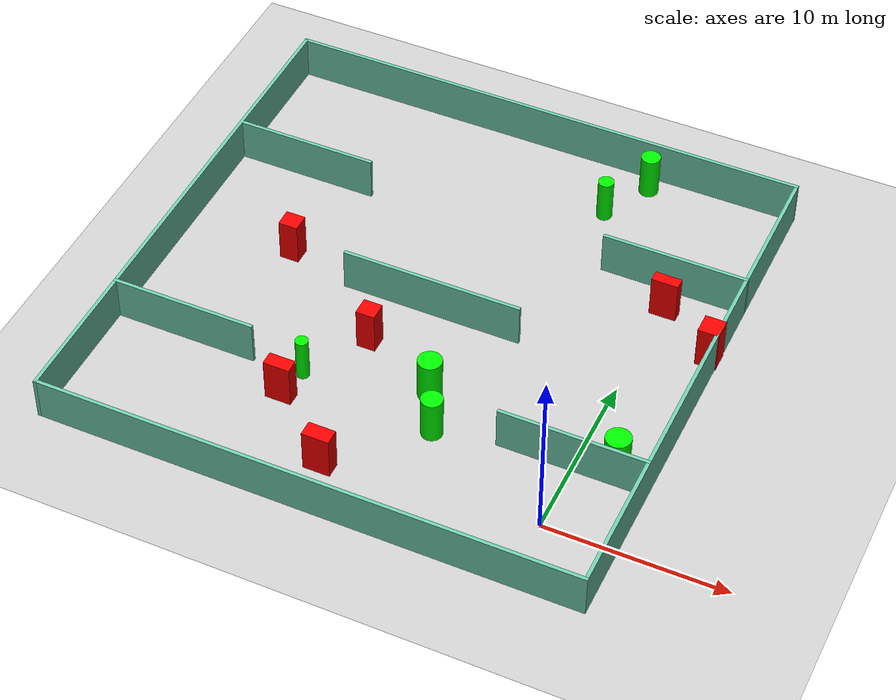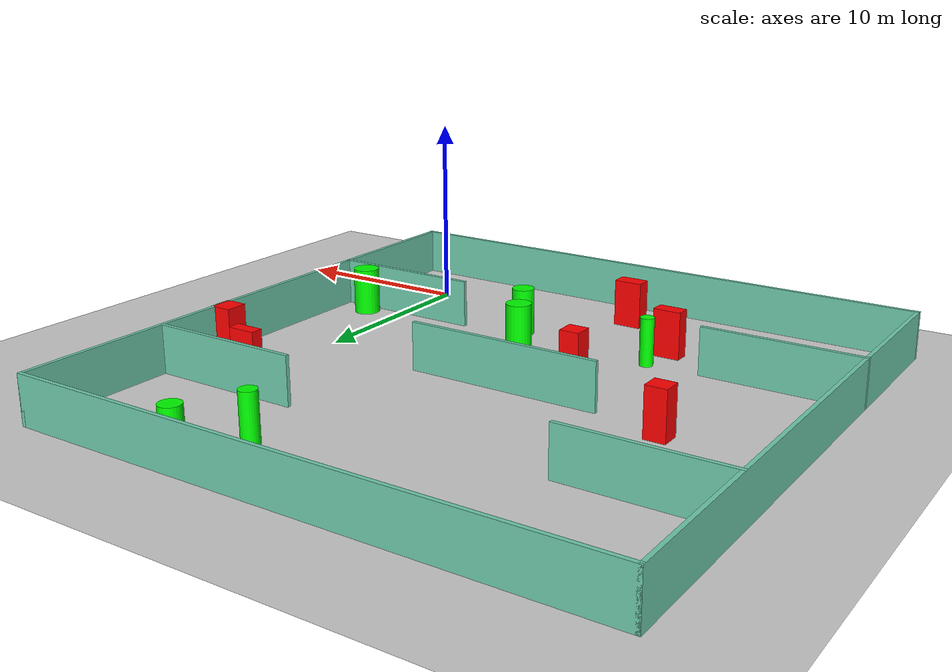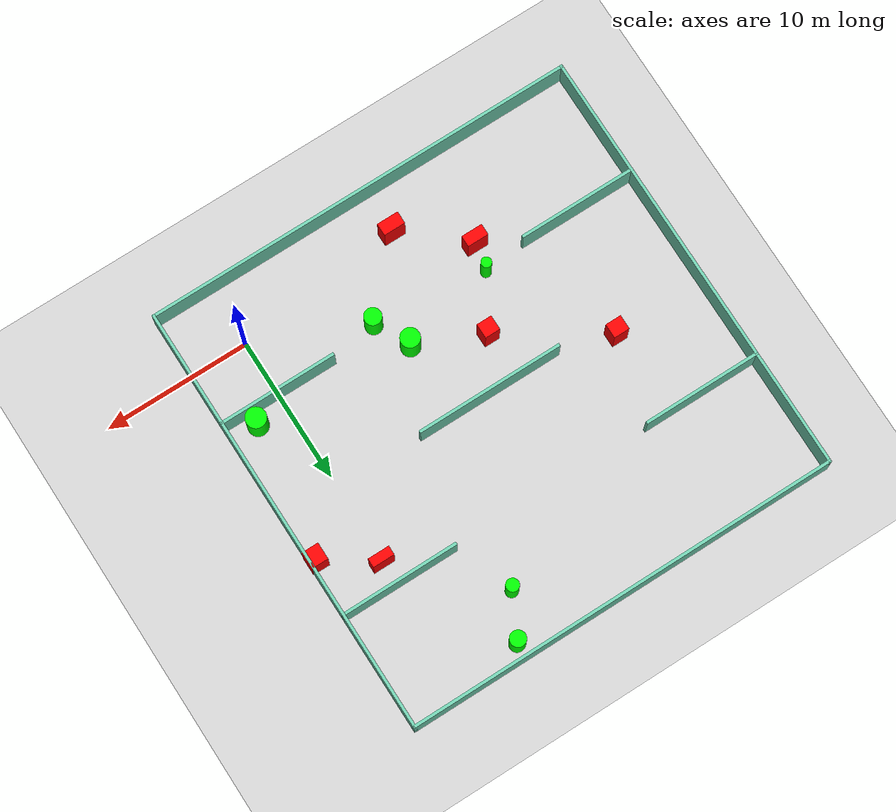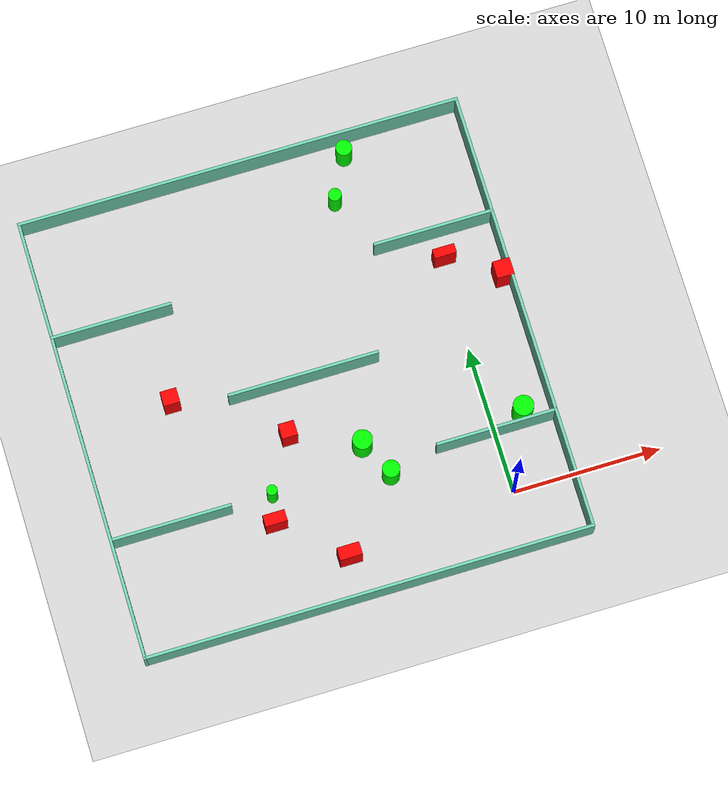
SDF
<sdf version="1.7">
 <world name="default">
  <light name="sun" type="directional">
   <pose>0 0 10 0 -0 0</pose>
   <diffuse>0.8 0.8 0.8 1</diffuse>
   <specular>0.2 0.2 0.2 1</specular>
   <attenuation>
    <range>1000</range>
    <constant>0.9</constant>
    <linear>0.01</linear>
    <quadratic>0.001</quadratic>
   </attenuation>
   <direction>-0.5 0.1 -0.9</direction>
   <spot><inner_angle>0</inner_angle><outer_angle>0</outer_angle><falloff>0</falloff></spot>
  </light>
  <model name="ground_plane">
   <static>1</static>
   <link name="link">
    <collision name="collision">
     <geometry><plane><normal>0 0 1</normal><size>100 100</size></plane></geometry>
     <surface>
      <contact><collide_bitmask>65535</collide_bitmask></contact>
      <friction><ode><mu>100</mu><mu2>50</mu2></ode></friction>
     </surface>
    </collision>
    <visual name="visual">
     <cast_shadows>0</cast_shadows>
     <geometry><plane><normal>0 0 1</normal><size>100 100</size></plane></geometry>
     <material>
      <script><uri>file://media/materials/scripts/gazebo.material</uri><name>Gazebo/Grey</name></script>
     </material>
    </visual>
   </link>
  </model>
  <gravity>0 0 -9.8</gravity>
  <magnetic_field>6e-06 2.3e-05 -4.2e-05</magnetic_field>
  <atmosphere type="adiabatic"/>
  <physics type="ode">
   <max_step_size>0.001</max_step_size>
   <real_time_factor>1</real_time_factor>
   <real_time_update_rate>1000</real_time_update_rate>
  </physics>
  <scene><ambient>0.4 0.4 0.4 1</ambient><background>0.7 0.7 0.7 1</background><shadows>1</shadows></scene>
  <spherical_coordinates>
   <surface_model>EARTH_WGS84</surface_model>
   <latitude_deg>0</latitude_deg>
   <longitude_deg>0</longitude_deg>
   <elevation>0</elevation>
   <heading_deg>0</heading_deg>
  </spherical_coordinates>
  <model name="my_base_walls">
   <link name="Wall_10">
    <collision name="Wall_10_Collision">
     <geometry><box><size>8.2 0.2 2.5</size></box></geometry>
     <pose>0 0 1.25 0 -0 0</pose>
    </collision>
    <visual name="Wall_10_Visual">
     <pose>0 0 1.25 0 -0 0</pose>
     <geometry><box><size>8.2 0.2 2.5</size></box></geometry>
     <material>
      <script><uri>file://media/materials/scripts/gazebo.material</uri><name>Gazebo/Grey</name></script>
      <ambient>0.435294 0.796078 0.67451 1</ambient>
     </material>
     <meta><layer>0</layer></meta>
    </visual>
    <pose>-11 -7 0 0 -0 0</pose>
   </link>
   <link name="Wall_12">
    <collision name="Wall_12_Collision">
     <geometry><box><size>8.2 0.2 2.5</size></box></geometry>
     <pose>0 0 1.25 0 -0 0</pose>
    </collision>
    <visual name="Wall_12_Visual">
     <pose>0 0 1.25 0 -0 0</pose>
     <geometry><box><size>8.2 0.2 2.5</size></box></geometry>
     <material>
      <script><uri>file://media/materials/scripts/gazebo.material</uri><name>Gazebo/Grey</name></script>
      <ambient>0.435294 0.796078 0.67451 1</ambient>
     </material>
     <meta><layer>0</layer></meta>
    </visual>
    <pose>-11 7 0 0 -0 0</pose>
   </link>
   <link name="Wall_14">
    <collision name="Wall_14_Collision">
     <geometry><box><size>8.2 0.2 2.5</size></box></geometry>
     <pose>0 0 1.25 0 -0 0</pose>
    </collision>
    <visual name="Wall_14_Visual">
     <pose>0 0 1.25 0 -0 0</pose>
     <geometry><box><size>8.2 0.2 2.5</size></box></geometry>
     <material>
      <script><uri>file://media/materials/scripts/gazebo.material</uri><name>Gazebo/Grey</name></script>
      <ambient>0.435294 0.796078 0.67451 1</ambient>
     </material>
     <meta><layer>0</layer></meta>
    </visual>
    <pose>11 7 0 0 -0 3.14159</pose>
   </link>
   <link name="Wall_16">
    <collision name="Wall_16_Collision">
     <geometry><box><size>10.2 0.2 2.5</size></box></geometry>
     <pose>0 0 1.25 0 -0 0</pose>
    </collision>
    <visual name="Wall_16_Visual">
     <pose>0 0 1.25 0 -0 0</pose>
     <geometry><box><size>10.2 0.2 2.5</size></box></geometry>
     <material>
      <script><uri>file://media/materials/scripts/gazebo.material</uri><name>Gazebo/Grey</name></script>
      <ambient>0.435294 0.796078 0.67451 1</ambient>
     </material>
     <meta><layer>0</layer></meta>
    </visual>
    <pose>0 0 0 0 -0 3.14159</pose>
   </link>
   <link name="Wall_2">
    <collision name="Wall_2_Collision">
     <geometry><box><size>30.2 0.2 2.5</size></box></geometry>
     <pose>0 0 1.25 0 -0 0</pose>
    </collision>
    <visual name="Wall_2_Visual">
     <pose>0 0 1.25 0 -0 0</pose>
     <geometry><box><size>30.2 0.2 2.5</size></box></geometry>
     <material>
      <script><uri>file://media/materials/scripts/gazebo.material</uri><name>Gazebo/Grey</name></script>
      <ambient>0.435294 0.796078 0.67451 1</ambient>
     </material>
     <meta><layer>0</layer></meta>
    </visual>
    <pose>0 -15 0 0 -0 3.14159</pose>
   </link>
   <link name="Wall_3">
    <collision name="Wall_3_Collision">
     <geometry><box><size>30.2 0.2 2.5</size></box></geometry>
     <pose>0 0 1.25 0 -0 0</pose>
    </collision>
    <visual name="Wall_3_Visual">
     <pose>0 0 1.25 0 -0 0</pose>
     <geometry><box><size>30.2 0.2 2.5</size></box></geometry>
     <material>
      <script><uri>file://media/materials/scripts/gazebo.material</uri><name>Gazebo/Grey</name></script>
      <ambient>0.435294 0.796078 0.67451 1</ambient>
     </material>
     <meta><layer>0</layer></meta>
    </visual>
    <pose>-15 0 0 0 -0 1.5708</pose>
   </link>
   <link name="Wall_4">
    <collision name="Wall_4_Collision">
     <geometry><box><size>30.2 0.2 2.5</size></box></geometry>
     <pose>0 0 1.25 0 -0 0</pose>
    </collision>
    <visual name="Wall_4_Visual">
     <pose>0 0 1.25 0 -0 0</pose>
     <geometry><box><size>30.2 0.2 2.5</size></box></geometry>
     <material>
      <script><uri>file://media/materials/scripts/gazebo.material</uri><name>Gazebo/Grey</name></script>
      <ambient>0.435294 0.796078 0.67451 1</ambient>
     </material>
     <meta><layer>0</layer></meta>
    </visual>
    <pose>0 15 0 0 -0 0</pose>
   </link>
   <link name="Wall_6">
    <collision name="Wall_6_Collision">
     <geometry><box><size>30.2 0.2 2.5</size></box></geometry>
     <pose>0 0 1.25 0 -0 0</pose>
    </collision>
    <visual name="Wall_6_Visual">
     <pose>0 0 1.25 0 -0 0</pose>
     <geometry><box><size>30.2 0.2 2.5</size></box></geometry>
     <material>
      <script><uri>file://media/materials/scripts/gazebo.material</uri><name>Gazebo/Grey</name></script>
      <ambient>0.435294 0.796078 0.67451 1</ambient>
     </material>
     <meta><layer>0</layer></meta>
    </visual>
    <pose>15 0 0 0 -0 1.5708</pose>
   </link>
   <link name="Wall_8">
    <collision name="Wall_8_Collision">
     <geometry><box><size>8.2 0.2 2.5</size></box></geometry>
     <pose>0 0 1.25 0 -0 0</pose>
    </collision>
    <visual name="Wall_8_Visual">
     <pose>0 0 1.25 0 -0 0</pose>
     <geometry><box><size>8.2 0.2 2.5</size></box></geometry>
     <material>
      <script><uri>file://media/materials/scripts/gazebo.material</uri><name>Gazebo/Grey</name></script>
      <ambient>0.435294 0.796078 0.67451 1</ambient>
     </material>
     <meta><layer>0</layer></meta>
    </visual>
    <pose>11 -7 0 0 -0 3.14159</pose>
   </link>
   <static>1</static>
   <pose>-11 11 0 0 -0 0</pose>
  </model>
  <model name="cylinder1">
   <static>1</static>
   <link name="link">
    <inertial>
     <mass>1</mass>
     <inertia><ixx>0.5</ixx><ixy>0</ixy><ixz>0</ixz><iyy>0.5</iyy><iyz>0</iyz><izz>1</izz></inertia>
    </inertial>
    <collision name="collision">
     <geometry><cylinder><radius>0.693702289039955</radius><length>2.5</length></cylinder></geometry>
    </collision>
    <visual name="visual">
     <geometry><cylinder><radius>0.693702289039955</radius><length>2.5</length></cylinder></geometry>
     <material>
      <ambient>0 1 0 1</ambient>
      <diffuse>0 1 0 1</diffuse>
      <specular>0.1 0.1 0.1 1</specular>
      <emissive>0 0 0 0</emissive>
     </material>
    </visual>
   </link>
   <pose>2.0628078361923947 4.840008502800641 1.25 0 0 0</pose>
  </model>
  <model name="cylinder2">
   <static>1</static>
   <link name="link">
    <inertial>
     <mass>1</mass>
     <inertia><ixx>0.5</ixx><ixy>0</ixy><ixz>0</ixz><iyy>0.5</iyy><iyz>0</iyz><izz>1</izz></inertia>
    </inertial>
    <collision name="collision">
     <geometry><cylinder><radius>0.35730413081323037</radius><length>2.5</length></cylinder></geometry>
    </collision>
    <visual name="visual">
     <geometry><cylinder><radius>0.35730413081323037</radius><length>2.5</length></cylinder></geometry>
     <material>
      <ambient>0 1 0 1</ambient>
      <diffuse>0 1 0 1</diffuse>
      <specular>0.1 0.1 0.1 1</specular>
      <emissive>0 0 0 0</emissive>
     </material>
    </visual>
   </link>
   <pose>-15.135749120895117 4.168443024433914 1.25 0 0 0</pose>
  </model>
  <model name="cylinder3">
   <static>1</static>
   <link name="link">
    <inertial>
     <mass>1</mass>
     <inertia><ixx>0.5</ixx><ixy>0</ixy><ixz>0</ixz><iyy>0.5</iyy><iyz>0</iyz><izz>1</izz></inertia>
    </inertial>
    <collision name="collision">
     <geometry><cylinder><radius>0.5434017455811508</radius><length>2.5</length></cylinder></geometry>
    </collision>
    <visual name="visual">
     <geometry><cylinder><radius>0.5434017455811508</radius><length>2.5</length></cylinder></geometry>
     <material>
      <ambient>0 1 0 1</ambient>
      <diffuse>0 1 0 1</diffuse>
      <specular>0.1 0.1 0.1 1</specular>
      <emissive>0 0 0 0</emissive>
     </material>
    </visual>
   </link>
   <pose>-4.07688306809354 24.89351173192026 1.25 0 0 0</pose>
  </model>
  <model name="cylinder4">
   <static>1</static>
   <link name="link">
    <inertial>
     <mass>1</mass>
     <inertia><ixx>0.5</ixx><ixy>0</ixy><ixz>0</ixz><iyy>0.5</iyy><iyz>0</iyz><izz>1</izz></inertia>
    </inertial>
    <collision name="collision">
     <geometry><cylinder><radius>0.6630691354930548</radius><length>2.5</length></cylinder></geometry>
    </collision>
    <visual name="visual">
     <geometry><cylinder><radius>0.6630691354930548</radius><length>2.5</length></cylinder></geometry>
     <material>
      <ambient>0 1 0 1</ambient>
      <diffuse>0 1 0 1</diffuse>
      <specular>0.1 0.1 0.1 1</specular>
      <emissive>0 0 0 0</emissive>
     </material>
    </visual>
   </link>
   <pose>-8.586947596929654 5.680487808840134 1.25 0 0 0</pose>
  </model>
  <model name="cylinder5">
   <static>1</static>
   <link name="link">
    <inertial>
     <mass>1</mass>
     <inertia><ixx>0.5</ixx><ixy>0</ixy><ixz>0</ixz><iyy>0.5</iyy><iyz>0</iyz><izz>1</izz></inertia>
    </inertial>
    <collision name="collision">
     <geometry><cylinder><radius>0.5882765933872165</radius><length>2.5</length></cylinder></geometry>
    </collision>
    <visual name="visual">
     <geometry><cylinder><radius>0.5882765933872165</radius><length>2.5</length></cylinder></geometry>
     <material>
      <ambient>0 1 0 1</ambient>
      <diffuse>0 1 0 1</diffuse>
      <specular>0.1 0.1 0.1 1</specular>
      <emissive>0 0 0 0</emissive>
     </material>
    </visual>
   </link>
   <pose>-7.368120489964186 3.3042885646839 1.25 0 0 0</pose>
  </model>
  <model name="cylinder6">
   <static>1</static>
   <link name="link">
    <inertial>
     <mass>1</mass>
     <inertia><ixx>0.5</ixx><ixy>0</ixy><ixz>0</ixz><iyy>0.5</iyy><iyz>0</iyz><izz>1</izz></inertia>
    </inertial>
    <collision name="collision">
     <geometry><cylinder><radius>0.4408183093356821</radius><length>2.5</length></cylinder></geometry>
    </collision>
    <visual name="visual">
     <geometry><cylinder><radius>0.4408183093356821</radius><length>2.5</length></cylinder></geometry>
     <material>
      <ambient>0 1 0 1</ambient>
      <diffuse>0 1 0 1</diffuse>
      <specular>0.1 0.1 0.1 1</specular>
      <emissive>0 0 0 0</emissive>
     </material>
    </visual>
   </link>
   <pose>-5.565340226389814 21.98427482046169 1.25 0 0 0</pose>
  </model>
  <model name="box1">
   <static>1</static>
   <link name="link">
    <inertial>
     <mass>1</mass>
     <inertia><ixx>0.083</ixx><ixy>0</ixy><ixz>0</ixz><iyy>0.083</iyy><iyz>0</iyz><izz>0.083</izz></inertia>
    </inertial>
    <collision name="collision">
     <geometry><box><size>1.1751057984197815 1.1658632318922062 2.5</size></box></geometry>
    </collision>
    <visual name="visual">
     <geometry><box><size>1.1751057984197815 1.1658632318922062 2.5</size></box></geometry>
     <material>
      <ambient>1 0 0 1</ambient>
      <diffuse>1 0 0 1</diffuse>
      <specular>0.1 0.1 0.1 1</specular>
      <emissive>0 0 0 0</emissive>
     </material>
    </visual>
    <sensor name="my_contact" type="contact">
     <contact><collision>box_collision</collision><topic>__default_topic__</topic></contact>
    </sensor>
   </link>
   <pose>3.556204486124443 14.035959466090855 1.25 0 0 0</pose>
  </model>
  <model name="box2">
   <static>1</static>
   <link name="link">
    <inertial>
     <mass>1</mass>
     <inertia><ixx>0.083</ixx><ixy>0</ixy><ixz>0</ixz><iyy>0.083</iyy><iyz>0</iyz><izz>0.083</izz></inertia>
    </inertial>
    <collision name="collision">
     <geometry><box><size>1.5015200408900333 0.8608123359129408 2.5</size></box></geometry>
    </collision>
    <visual name="visual">
     <geometry><box><size>1.5015200408900333 0.8608123359129408 2.5</size></box></geometry>
     <material>
      <ambient>1 0 0 1</ambient>
      <diffuse>1 0 0 1</diffuse>
      <specular>0.1 0.1 0.1 1</specular>
      <emissive>0 0 0 0</emissive>
     </material>
    </visual>
    <sensor name="my_contact" type="contact">
     <contact><collision>box_collision</collision><topic>__default_topic__</topic></contact>
    </sensor>
   </link>
   <pose>-11.492843487159705 -1.1080005388301726 1.25 0 0 0</pose>
  </model>
  <model name="box3">
   <static>1</static>
   <link name="link">
    <inertial>
     <mass>1</mass>
     <inertia><ixx>0.083</ixx><ixy>0</ixy><ixz>0</ixz><iyy>0.083</iyy><iyz>0</iyz><izz>0.083</izz></inertia>
    </inertial>
    <collision name="collision">
     <geometry><box><size>1.468968550896879 0.7748305838953945 2.5</size></box></geometry>
    </collision>
    <visual name="visual">
     <geometry><box><size>1.468968550896879 0.7748305838953945 2.5</size></box></geometry>
     <material>
      <ambient>1 0 0 1</ambient>
      <diffuse>1 0 0 1</diffuse>
      <specular>0.1 0.1 0.1 1</specular>
      <emissive>0 0 0 0</emissive>
     </material>
    </visual>
    <sensor name="my_contact" type="contact">
     <contact><collision>box_collision</collision><topic>__default_topic__</topic></contact>
    </sensor>
   </link>
   <pose>-15.470242522579985 2.338201041470416 1.25 0 0 0</pose>
  </model>
  <model name="box4">
   <static>1</static>
   <link name="link">
    <inertial>
     <mass>1</mass>
     <inertia><ixx>0.083</ixx><ixy>0</ixy><ixz>0</ixz><iyy>0.083</iyy><iyz>0</iyz><izz>0.083</izz></inertia>
    </inertial>
    <collision name="collision">
     <geometry><box><size>1.055407349127277 1.0119882339235864 2.5</size></box></geometry>
    </collision>
    <visual name="visual">
     <geometry><box><size>1.055407349127277 1.0119882339235864 2.5</size></box></geometry>
     <material>
      <ambient>1 0 0 1</ambient>
      <diffuse>1 0 0 1</diffuse>
      <specular>0.1 0.1 0.1 1</specular>
      <emissive>0 0 0 0</emissive>
     </material>
    </visual>
    <sensor name="my_contact" type="contact">
     <contact><collision>box_collision</collision><topic>__default_topic__</topic></contact>
    </sensor>
   </link>
   <pose>-13.014378904334803 7.701594007251531 1.25 0 0 0</pose>
  </model>
  <model name="box5">
   <static>1</static>
   <link name="link">
    <inertial>
     <mass>1</mass>
     <inertia><ixx>0.083</ixx><ixy>0</ixy><ixz>0</ixz><iyy>0.083</iyy><iyz>0</iyz><izz>0.083</izz></inertia>
    </inertial>
    <collision name="collision">
     <geometry><box><size>1.4925013480517033 0.6309975320689704 2.5</size></box></geometry>
    </collision>
    <visual name="visual">
     <geometry><box><size>1.4925013480517033 0.6309975320689704 2.5</size></box></geometry>
     <material>
      <ambient>1 0 0 1</ambient>
      <diffuse>1 0 0 1</diffuse>
      <specular>0.1 0.1 0.1 1</specular>
      <emissive>0 0 0 0</emissive>
     </material>
    </visual>
    <sensor name="my_contact" type="contact">
     <contact><collision>box_collision</collision><topic>__default_topic__</topic></contact>
    </sensor>
   </link>
   <pose>0.201868616822388 16.241137494786408 1.25 0 0 0</pose>
  </model>
  <model name="box6">
   <static>1</static>
   <link name="link">
    <inertial>
     <mass>1</mass>
     <inertia><ixx>0.083</ixx><ixy>0</ixy><ixz>0</ixz><iyy>0.083</iyy><iyz>0</iyz><izz>0.083</izz></inertia>
    </inertial>
    <collision name="collision">
     <geometry><box><size>1.093620735878038 0.9965629830491989 2.5</size></box></geometry>
    </collision>
    <visual name="visual">
     <geometry><box><size>1.093620735878038 0.9965629830491989 2.5</size></box></geometry>
     <material>
      <ambient>1 0 0 1</ambient>
      <diffuse>1 0 0 1</diffuse>
      <specular>0.1 0.1 0.1 1</specular>
      <emissive>0 0 0 0</emissive>
     </material>
    </visual>
    <sensor name="my_contact" type="contact">
     <contact><collision>box_collision</collision><topic>__default_topic__</topic></contact>
    </sensor>
   </link>
   <pose>-19.726277186839287 11.9791624906976 1.25 0 0 0</pose>
  </model>
 </world>
</sdf>
